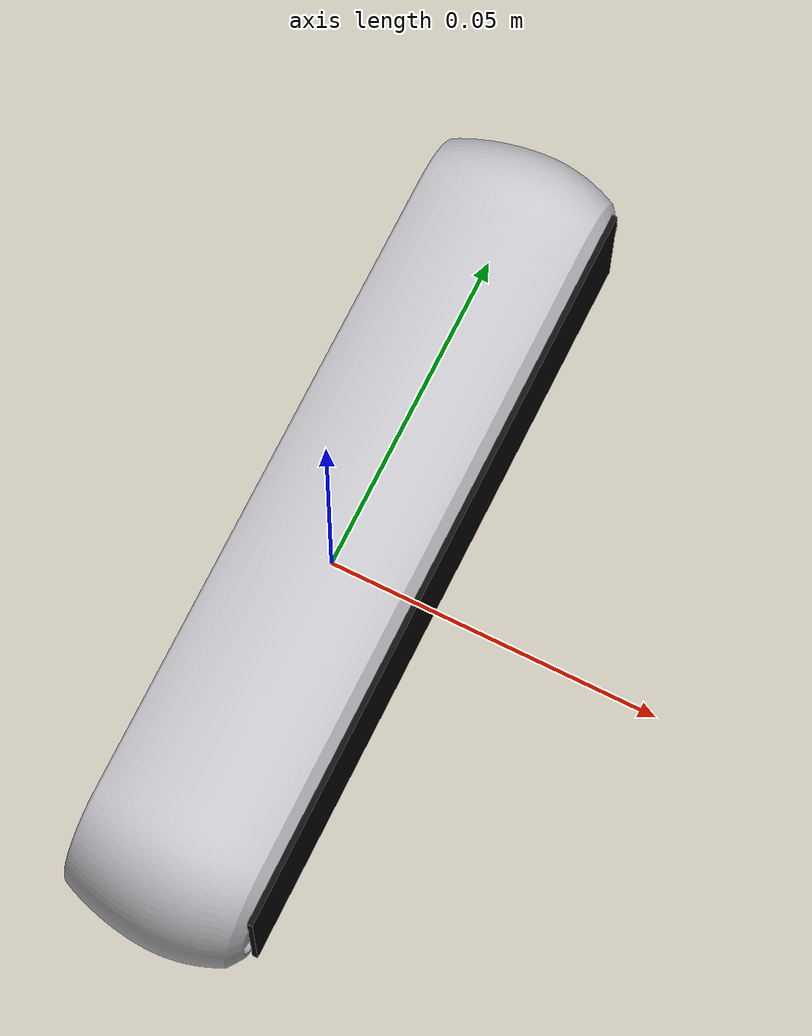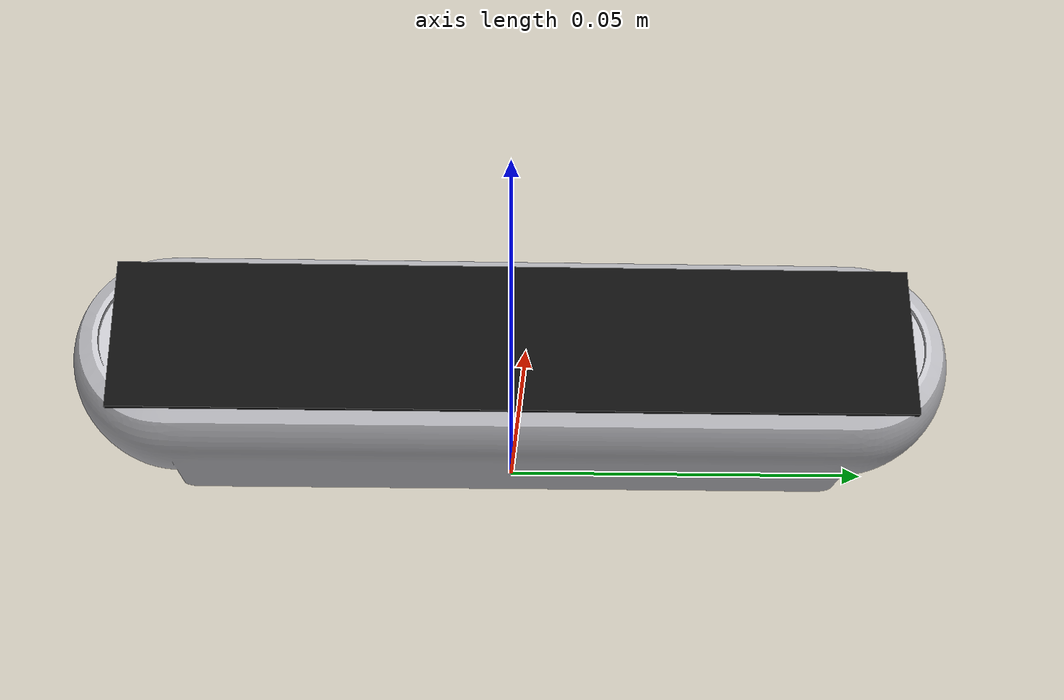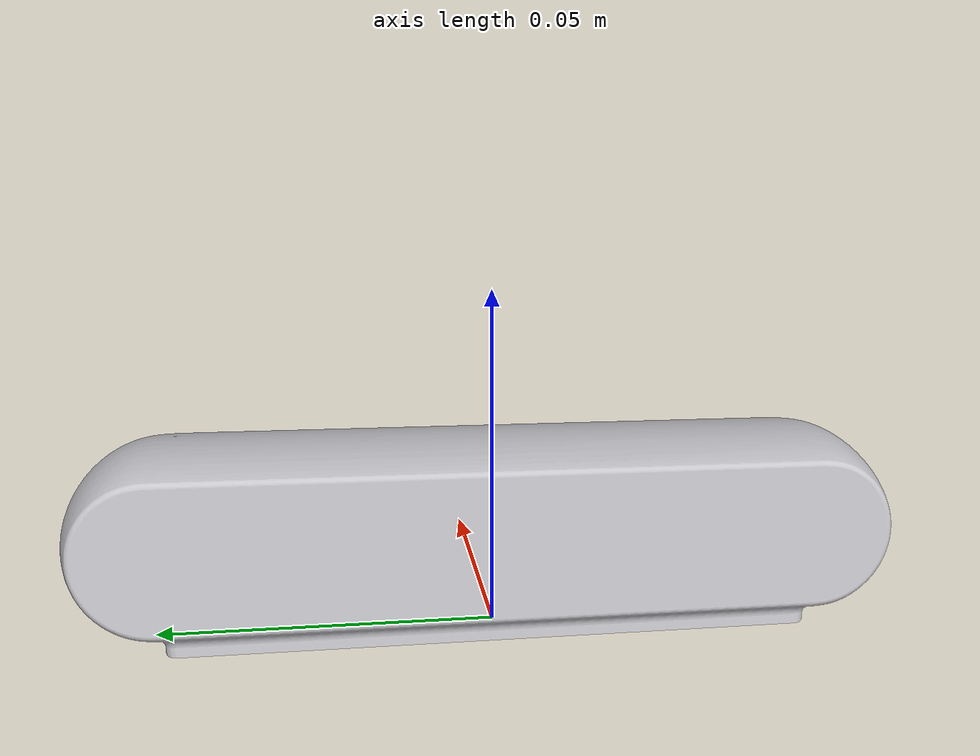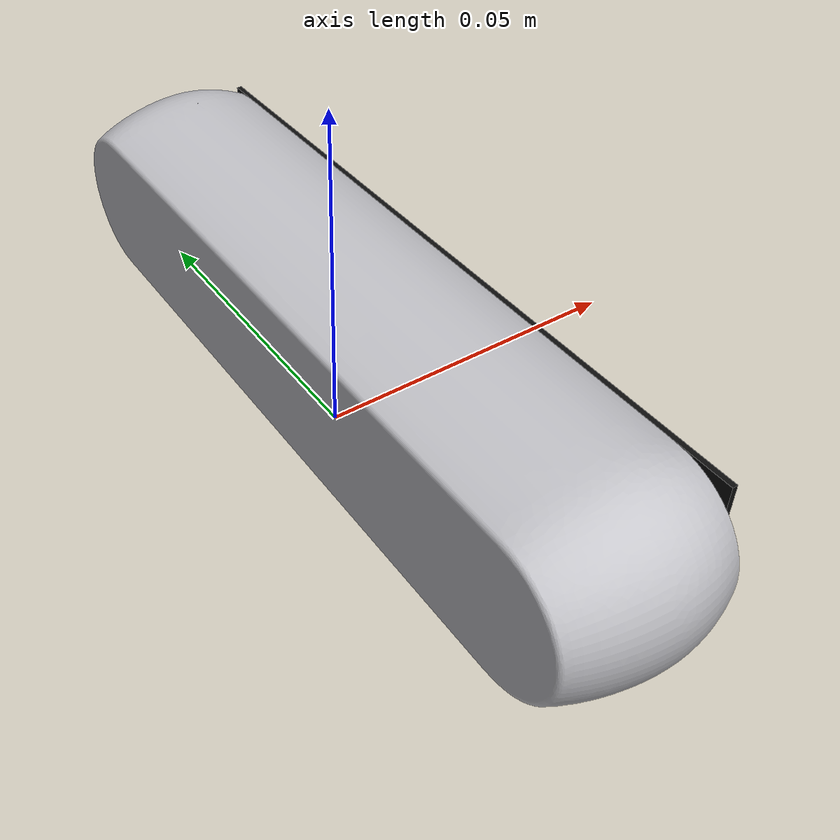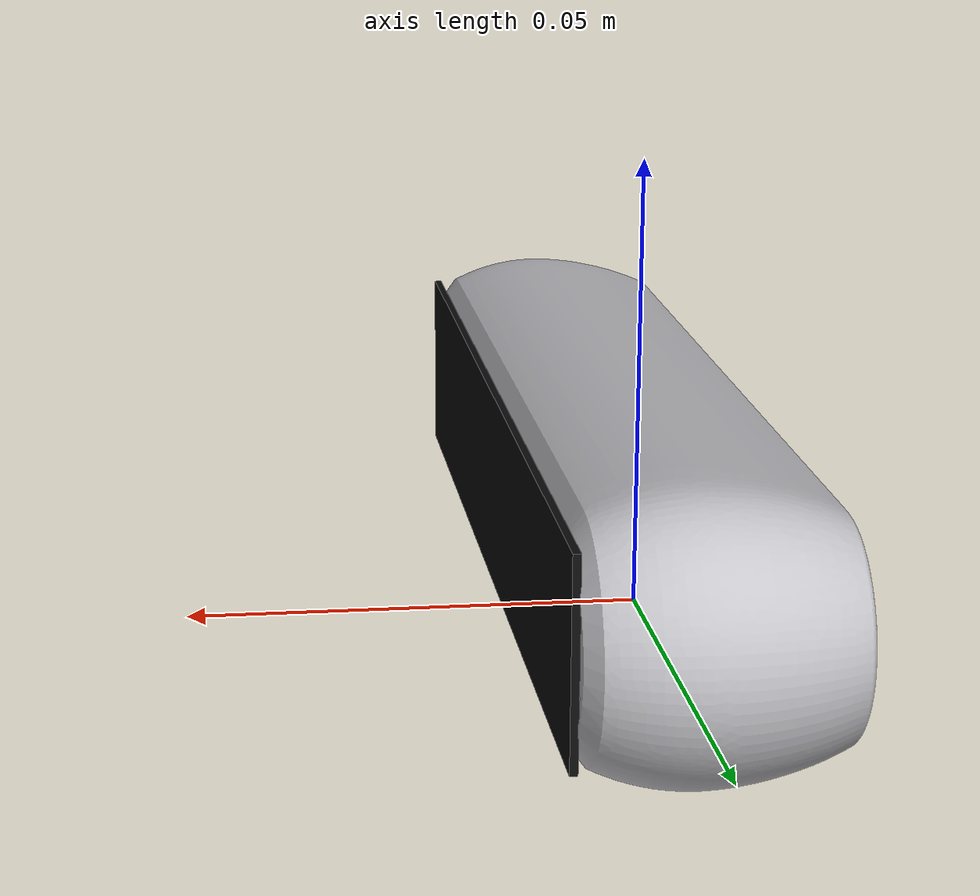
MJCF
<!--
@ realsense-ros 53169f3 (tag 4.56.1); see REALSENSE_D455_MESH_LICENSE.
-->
<mujoco model="realsense_d455">
  <compiler angle="radian" meshdir="meshes" autolimits="true"/>

  <asset>
    <mesh name="d455_mesh" file="d455.obj"/>
    <material name="d455_body" rgba="0.75 0.75 0.77 1" specular="0.4" shininess="0.3"/>
    <material name="d455_glass" rgba="0.05 0.05 0.05 1" specular="0.6" shininess="0.6"/>
  </asset>

  <worldbody>
    <body name="mount">
      <body name="link" pos="0.01115 0.0475 0.0145">
        <geom name="d455_visual" type="mesh" mesh="d455_mesh" material="d455_body"
              pos="0.00465 -0.0475 0" quat="0.5 0.5 0.5 0.5" contype="0" conaffinity="0"/>
        <!-- Front glass strip: the decimated mesh has no separate material for the front window,
             so a thin black plate stands in, just proud of the mesh's front face. -->
        <geom name="d455_front" type="box" pos="0.00495 -0.0475 0" quat="0.5 0.5 0.5 0.5"
              size="0.055 0.0105 0.0004" material="d455_glass" contype="0" conaffinity="0"/>
        <geom name="d455_collision" type="box" pos="-0.00845 -0.0475 0"
              quat="0.5 0.5 0.5 0.5" size="0.062 0.0145 0.013" group="3"/>
        <camera name="d455_color" pos="0 -0.059 0" xyaxes="0 -1 0 0 0 1"
                fovy="62" resolution="640 400"/>
        <camera name="d455_depth" pos="0 0 0" xyaxes="0 -1 0 0 0 1"
                fovy="58" resolution="848 480"/>
      </body>
    </body>
  </worldbody>
</mujoco>
